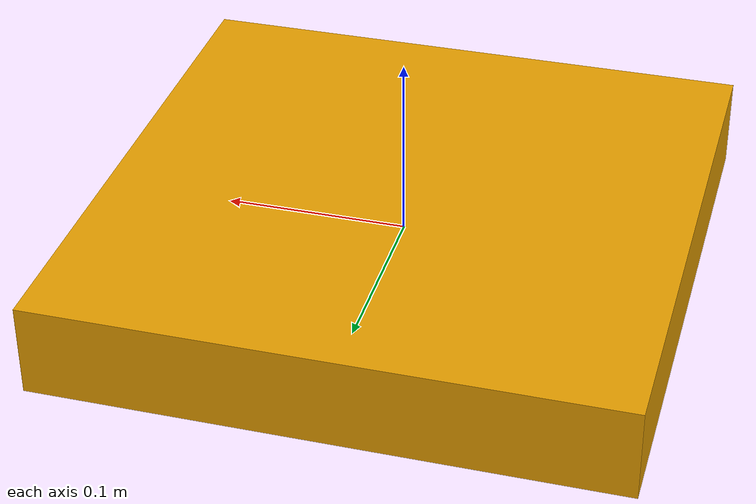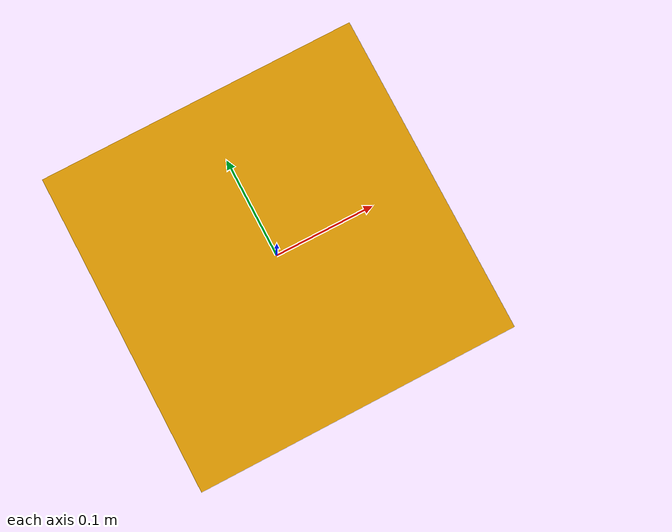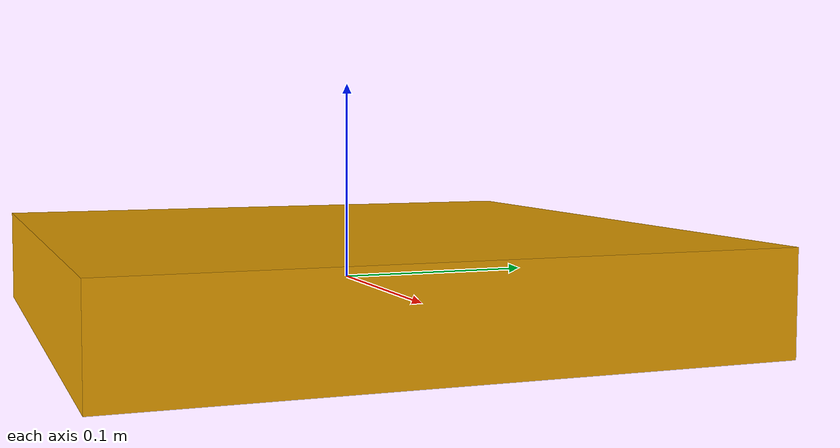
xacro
<?xml version="1.0"?>
<robot name="superchick" xmlns:xacro="http://www.ros.org/wiki/xacro">

   <!-- General Properties -->
   <!-- Lekan Ogunmolu | November 2016 -->
   <xacro:property name="bladder_length" value="0.15748" />
   <xacro:property name="bladder_width" value="${bladder_length}" />
   <xacro:property name="bladder_thickness" value="0.0508" />
   <xacro:property name="bladder_constant" value="2" />
   <xacro:property name="left_bladder_x" value="${bladder_width/2}" />
   <xacro:property name="mass" value="1e-2" />
   <xacro:property name="inertia_mom" value="${mass/12}" />

   <link name="big_bladder_link">
     <visual>
       <origin xyz="0 0 0" rpy="0 0 0" />
       <geometry>
         <box size="${bladder_constant*bladder_length} ${bladder_constant*bladder_width} ${bladder_thickness}" />
       </geometry>
       <material name="bladder_color"/>
       <origin xyz="0 0 0" rpy="0 0 0" />
     </visual>

     <collision>
       <geometry>
        <box size="${bladder_constant*bladder_length} ${bladder_constant*bladder_width} ${2*bladder_thickness}" />
       </geometry>
       <origin xyz="0 0 0" rpy="0 0 0" />
     </collision>

     <inertial>
       <mass value="${mass}"/>
       <inertia ixx="${mass/12}" ixy="0.0" ixz="0.0"
        iyy="${inertia_mom}" iyz="0.0000"
        izz="${inertia_mom}"/>
     </inertial>
   </link>

</robot>
